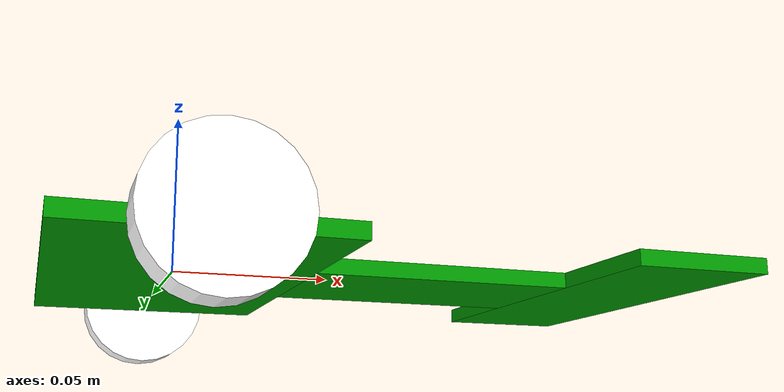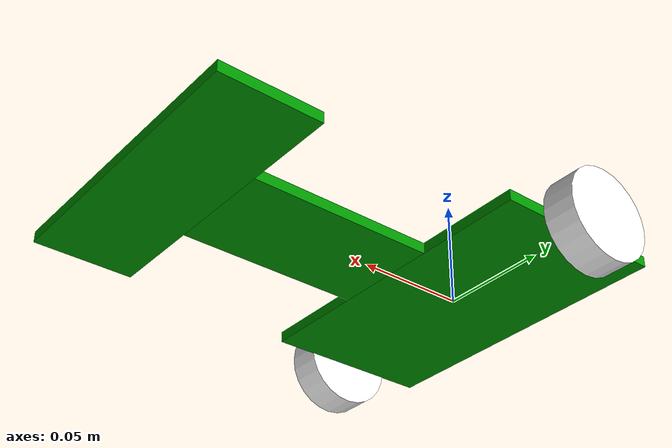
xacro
<?xml version="1.0"?>
<robot name="FLF" xmlns:xacro="http://www.ros.org/wiki/xacro">

    <!-- Scaling Factor -->
    <xacro:property name="scale" value="0.01"/>

    <material name="grey">
        <color rgba="0.7 0.7 0.7 1"/>
    </material>
    <material name="green">
        <color rgba="0 0.6 0.0 1"/>
    </material>
    <material name="white">
        <color rgba="1 1 1 1"/>
    </material>

    <!-- Base Footprint Link -->
    <link name="base_footprint" />

    <!-- Base Link -->
    <link name="base_link">
        <visual>
            <geometry>
                <box size="${8 * scale} ${15 * scale} ${0.5 * scale}"/>
            </geometry>
            <origin xyz="0 0 0" rpy="0 0 0"/>
            <material name="green"/>
        </visual>
    </link>

    <!-- Neck Link -->
    <link name="neck_link">
        <visual>
            <geometry>
                <box size="${8.5 * scale} ${5 * scale} ${0.5 * scale}"/>
            </geometry>
            <material name="green"/>
        </visual>
    </link>

    <!-- IR Sensor Link -->
    <link name="ir_link">
        <visual>
            <geometry>
                <box size="${4.5 * scale} ${13.5 * scale} ${0.5 * scale}"/>
            </geometry>
            <material name="green"/>
        </visual>
    </link>

    <!-- Left Wheel -->
    <link name="left_wheel">
        <visual>
            <geometry>
                <cylinder radius="${2.15 * scale}" length="${1.5 * scale}"/>
            </geometry>
            <material name="white"/>
        </visual>
    </link>

    <!-- Right Wheel -->
    <link name="right_wheel">
        <visual>
            <geometry>
                <cylinder radius="${2.15 * scale}" length="${1.55 * scale}"/>
            </geometry>
            <material name="white"/>
        </visual>
    </link>

    <!-- Joints -->
    <joint name="base_footprint_joint" type="fixed">
        <parent link="base_footprint"/>
        <child link="base_link"/>
        <origin xyz="0 0 0" rpy="0 0 0"/>
    </joint>

    <joint name="base_neck_joint" type="fixed">
        <parent link="base_link"/>
        <child link="neck_link"/>
        <origin xyz="${8.25 * scale} 0 0" rpy="0 0 0"/>

    </joint>

    <joint name="base_ir_joint" type="fixed">
        <parent link="base_link"/>
        <child link="ir_link"/>
        <origin xyz="${14.75 * scale} 0 0" rpy="0 0 0"/>

    </joint>

    <joint name="base_left_wheel_joint" type="continuous">
        <parent link="base_link"/>
        <child link="left_wheel"/>
        <origin xyz="0 ${8.25 * scale} 0" rpy="1.57 0 0"/>
        <axis xyz="0.0 0.0 1"/>
    </joint>

    <joint name="base_right_wheel_joint" type="continuous">
        <parent link="base_link"/>
        <child link="right_wheel"/>
        <origin xyz="0 ${-8.25 * scale} 0" rpy="1.57 0 0"/>
        <axis xyz="0.0 0.0 1"/>
    </joint>
</robot>
